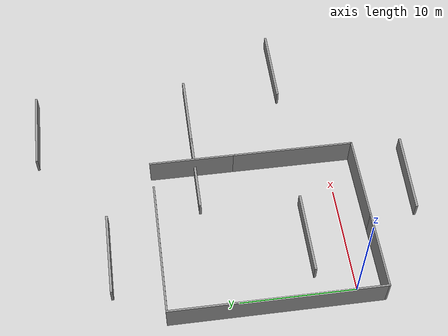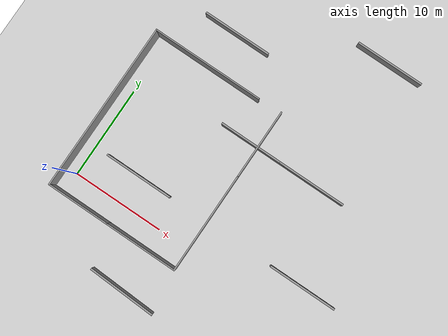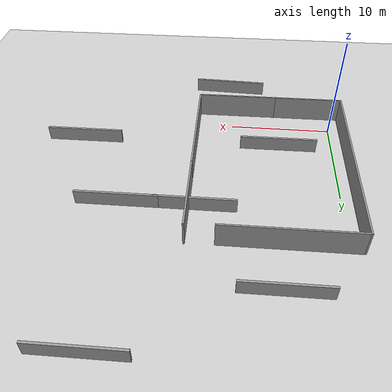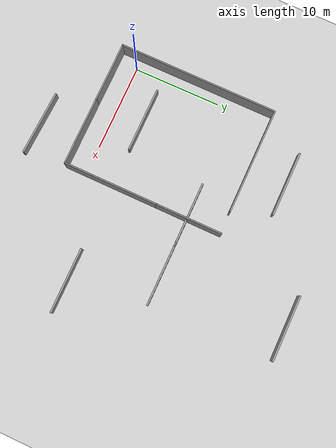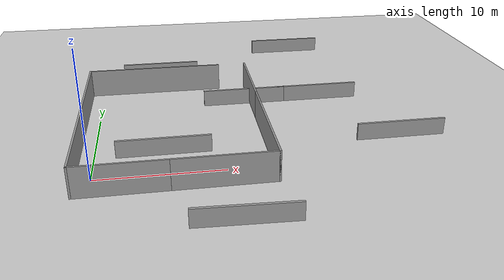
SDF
<sdf version="1.6">
 <world name="default">
  <plugin name="ardupilot_sitl_gazebo_plugin" filename="libardupilot_sitl_gazebo_plugin_rover.so">
   <UAV_MODEL>rover</UAV_MODEL>
  </plugin>
  <light name="sun" type="directional">
   <pose>0 0 10 0 -0 0</pose>
   <diffuse>0.8 0.8 0.8 1</diffuse>
   <specular>0.2 0.2 0.2 1</specular>
   <attenuation>
    <range>1000</range>
    <constant>0.9</constant>
    <linear>0.01</linear>
    <quadratic>0.001</quadratic>
   </attenuation>
   <direction>-0.5 0.1 -0.9</direction>
  </light>
  <model name="ground_plane">
   <static>1</static>
   <link name="link">
    <collision name="collision">
     <geometry><plane><normal>0 0 1</normal><size>100 100</size></plane></geometry>
     <surface><friction><ode><mu>100</mu><mu2>50</mu2></ode></friction></surface>
    </collision>
    <visual name="visual">
     <cast_shadows>0</cast_shadows>
     <geometry><plane><normal>0 0 1</normal><size>100 100</size></plane></geometry>
     <material>
      <script><uri>file://media/materials/scripts/gazebo.material</uri><name>Gazebo/Grey</name></script>
     </material>
    </visual>
   </link>
  </model>
  <gravity>0 0 -9.8</gravity>
  <magnetic_field>6e-06 2.3e-05 -4.2e-05</magnetic_field>
  <atmosphere type="adiabatic"/>
  <physics name="default_physics" default="0" type="ode">
   <max_step_size>0.001</max_step_size>
   <real_time_factor>1</real_time_factor>
   <real_time_update_rate>1000</real_time_update_rate>
  </physics>
  <scene><ambient>0.4 0.4 0.4 1</ambient><background>0.7 0.7 0.7 1</background><shadows>1</shadows></scene>
  <spherical_coordinates>
   <surface_model>EARTH_WGS84</surface_model>
   <latitude_deg>0</latitude_deg>
   <longitude_deg>0</longitude_deg>
   <elevation>0</elevation>
   <heading_deg>0</heading_deg>
  </spherical_coordinates>
  <model name="EmptyMaze">
   <pose>6.18414 7.04446 0 0 -0 0</pose>
   <link name="Wall_0">
    <collision name="Wall_0_Collision">
     <geometry><box><size>7 0.15 2.5</size></box></geometry>
     <pose>0 0 1.25 0 -0 0</pose>
    </collision>
    <visual name="Wall_0_Visual">
     <pose>0 0 1.25 0 -0 0</pose>
     <geometry><box><size>7 0.15 2.5</size></box></geometry>
     <material>
      <script><uri>file://media/materials/scripts/gazebo.material</uri><name>Gazebo/Grey</name></script>
      <ambient>1 1 1 1</ambient>
     </material>
     <meta><layer>0</layer></meta>
    </visual>
    <pose>-3.925 -9.225 0 0 -0 3.14159</pose>
   </link>
   <link name="Wall_2">
    <collision name="Wall_2_Collision">
     <geometry><box><size>8 0.15 2.5</size></box></geometry>
     <pose>0 0 1.25 0 -0 0</pose>
    </collision>
    <visual name="Wall_2_Visual">
     <pose>0 0 1.25 0 -0 0</pose>
     <geometry><box><size>8 0.15 2.5</size></box></geometry>
     <material>
      <script><uri>file://media/materials/scripts/gazebo.material</uri><name>Gazebo/Grey</name></script>
      <ambient>1 1 1 1</ambient>
     </material>
     <meta><layer>0</layer></meta>
    </visual>
    <pose>3.425 -9.225 0 0 -0 0</pose>
   </link>
   <link name="Wall_4">
    <collision name="Wall_4_Collision">
     <geometry><box><size>11 0.15 2.5</size></box></geometry>
     <pose>0 0 1.25 0 -0 0</pose>
    </collision>
    <visual name="Wall_4_Visual">
     <pose>0 0 1.25 0 -0 0</pose>
     <geometry><box><size>11 0.15 2.5</size></box></geometry>
     <material>
      <script><uri>file://media/materials/scripts/gazebo.material</uri><name>Gazebo/Grey</name></script>
      <ambient>1 1 1 1</ambient>
     </material>
     <meta><layer>0</layer></meta>
    </visual>
    <pose>7.35 -3.8 0 0 -0 1.5708</pose>
   </link>
   <link name="Wall_6">
    <collision name="Wall_6_Collision">
     <geometry><box><size>18.5 0.15 2.5</size></box></geometry>
     <pose>0 0 1.25 0 -0 0</pose>
    </collision>
    <visual name="Wall_6_Visual">
     <pose>0 0 1.25 0 -0 0</pose>
     <geometry><box><size>18.5 0.15 2.5</size></box></geometry>
     <material>
      <script><uri>file://media/materials/scripts/gazebo.material</uri><name>Gazebo/Grey</name></script>
      <ambient>1 1 1 1</ambient>
     </material>
     <meta><layer>0</layer></meta>
    </visual>
    <pose>-7.35 -0.049999 0 0 -0 1.5708</pose>
   </link>
   <link name="Wall_7">
    <collision name="Wall_7_Collision">
     <geometry><box><size>12.25 0.15 2.5</size></box></geometry>
     <pose>0 0 1.25 0 -0 0</pose>
    </collision>
    <visual name="Wall_7_Visual">
     <pose>0 0 1.25 0 -0 0</pose>
     <geometry><box><size>12.25 0.15 2.5</size></box></geometry>
     <material>
      <script><uri>file://media/materials/scripts/gazebo.material</uri><name>Gazebo/Grey</name></script>
      <ambient>1 1 1 1</ambient>
     </material>
     <meta><layer>0</layer></meta>
    </visual>
    <pose>-1.3 9.125 0 0 -0 0</pose>
   </link>
   <link name="Wall_9">
    <collision name="Wall_9_Collision">
     <geometry><box><size>7.75 0.15 2.5</size></box></geometry>
     <pose>0 0 1.25 0 -0 0</pose>
    </collision>
    <visual name="Wall_9_Visual">
     <pose>0 0 1.25 0 -0 0</pose>
     <geometry><box><size>7.75 0.15 2.5</size></box></geometry>
     <material>
      <script><uri>file://media/materials/scripts/gazebo.material</uri><name>Gazebo/Grey</name></script>
      <ambient>1 1 1 1</ambient>
     </material>
     <meta><layer>0</layer></meta>
    </visual>
    <pose>7.35 5.425 0 0 -0 1.5708</pose>
   </link>
   <static>1</static>
  </model>
  <plugin name="event_plugin" filename="libSimEventsPlugin.so">
   <region>
    <name>maze_exit</name>
    <volume><min>10.891129 16.497023 -1</min><max>13.609080 17.753689 1</max></volume>
   </region>
   <event>
    <name>maze_exit_event</name>
    <type>occupied</type>
    <region>maze_exit</region>
    <topic>~/region</topic>
    <msg_data>exited_the_maze</msg_data>
   </event>
  </plugin>
  <model name="grey_wall">
   <static>1</static>
   <link name="link">
    <pose>2.68632 1.66044 0 0 -0 0</pose>
    <collision name="collision"><geometry><box><size>7.5 0.2 2.8</size></box></geometry></collision>
    <visual name="visual">
     <cast_shadows>0</cast_shadows>
     <geometry><box><size>7.5 0.2 2.8</size></box></geometry>
     <material>
      <script>
       <uri>model://grey_wall/materials/scripts</uri>
       <uri>model://grey_wall/materials/textures</uri>
       <name>vrc/grey_wall</name>
      </script>
     </material>
    </visual>
   </link>
   <pose>2.68632 1.66044 0 0 -0 0</pose>
  </model>
  <model name="grey_wall_0">
   <static>1</static>
   <link name="link">
    <pose>12.419 1.66098 0 0 -0 0</pose>
    <collision name="collision"><geometry><box><size>7.5 0.2 2.8</size></box></geometry></collision>
    <visual name="visual">
     <cast_shadows>0</cast_shadows>
     <geometry><box><size>7.5 0.2 2.8</size></box></geometry>
     <material>
      <script>
       <uri>model://grey_wall/materials/scripts</uri>
       <uri>model://grey_wall/materials/textures</uri>
       <name>vrc/grey_wall</name>
      </script>
     </material>
    </visual>
   </link>
   <pose>12.419 1.66098 0 0 -0 0</pose>
  </model>
  <model name="grey_wall_1">
   <static>1</static>
   <link name="link">
    <pose>9.94903 6.1288 0 0 -0 0</pose>
    <collision name="collision"><geometry><box><size>7.5 0.2 2.8</size></box></geometry></collision>
    <visual name="visual">
     <cast_shadows>0</cast_shadows>
     <geometry><box><size>7.5 0.2 2.8</size></box></geometry>
     <material>
      <script>
       <uri>model://grey_wall/materials/scripts</uri>
       <uri>model://grey_wall/materials/textures</uri>
       <name>vrc/grey_wall</name>
      </script>
     </material>
    </visual>
   </link>
   <pose>9.94903 6.1288 0 0 -0 0</pose>
  </model>
  <model name="grey_wall_2">
   <static>1</static>
   <link name="link">
    <pose>2.71441 10.2777 0 0 -0 0</pose>
    <collision name="collision"><geometry><box><size>7.5 0.2 2.8</size></box></geometry></collision>
    <visual name="visual">
     <cast_shadows>0</cast_shadows>
     <geometry><box><size>7.5 0.2 2.8</size></box></geometry>
     <material>
      <script>
       <uri>model://grey_wall/materials/scripts</uri>
       <uri>model://grey_wall/materials/textures</uri>
       <name>vrc/grey_wall</name>
      </script>
     </material>
    </visual>
   </link>
   <pose>2.71441 10.2777 0 0 -0 0</pose>
  </model>
  <model name="grey_wall_3">
   <static>1</static>
   <link name="link">
    <pose>6.49452 6.12823 0 0 -0 0</pose>
    <collision name="collision"><geometry><box><size>7.5 0.2 2.8</size></box></geometry></collision>
    <visual name="visual">
     <cast_shadows>0</cast_shadows>
     <geometry><box><size>7.5 0.2 2.8</size></box></geometry>
     <material>
      <script>
       <uri>model://grey_wall/materials/scripts</uri>
       <uri>model://grey_wall/materials/textures</uri>
       <name>vrc/grey_wall</name>
      </script>
     </material>
    </visual>
   </link>
   <pose>6.49452 6.12823 0 0 -0 0</pose>
  </model>
  <model name="grey_wall_4">
   <static>1</static>
   <link name="link">
    <pose>9.85349 13.2883 0 0 -0 0</pose>
    <collision name="collision"><geometry><box><size>7.5 0.2 2.8</size></box></geometry></collision>
    <visual name="visual">
     <cast_shadows>0</cast_shadows>
     <geometry><box><size>7.5 0.2 2.8</size></box></geometry>
     <material>
      <script>
       <uri>model://grey_wall/materials/scripts</uri>
       <uri>model://grey_wall/materials/textures</uri>
       <name>vrc/grey_wall</name>
      </script>
     </material>
    </visual>
   </link>
   <pose>9.85349 13.2883 0 0 -0 0</pose>
  </model>
  <model name="grey_wall_5">
   <static>1</static>
   <link name="link">
    <pose>8.7653 1.88147 0 0 0 -1.59264</pose>
    <collision name="collision"><geometry><box><size>7.5 0.2 2.8</size></box></geometry></collision>
    <visual name="visual">
     <cast_shadows>0</cast_shadows>
     <geometry><box><size>7.5 0.2 2.8</size></box></geometry>
     <material>
      <script>
       <uri>model://grey_wall/materials/scripts</uri>
       <uri>model://grey_wall/materials/textures</uri>
       <name>vrc/grey_wall</name>
      </script>
     </material>
    </visual>
   </link>
   <pose>8.7653 1.88147 0 0 0 -1.59264</pose>
  </model>
 </world>
</sdf>
